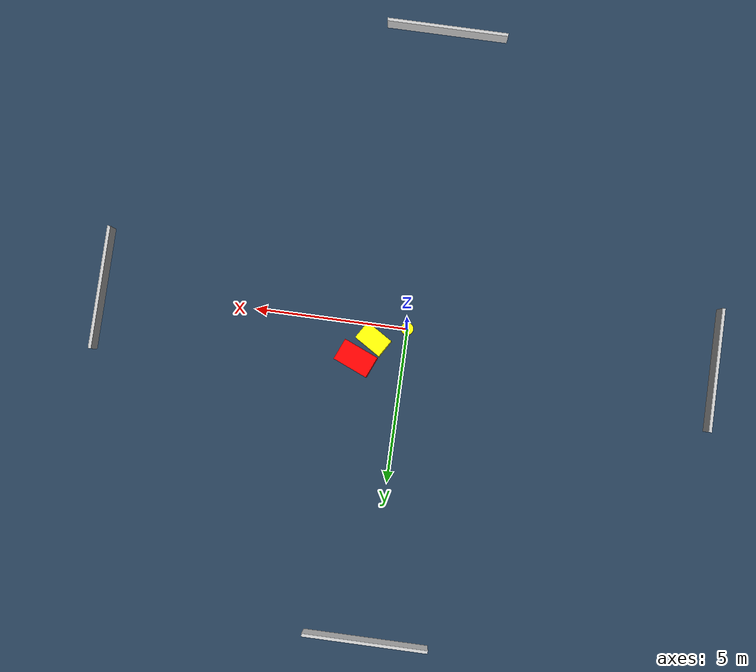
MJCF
<?xml version="1.0" ?>
<mujoco model="generated_environment">
  <option timestep="0.01" integrator="RK4" cone="elliptic"/>
  <default>
    <geom density="1"/>
  </default>
  <asset>
    <texture builtin="gradient" height="3072" name="skybox" rgb1="0.3 0.5 0.7" rgb2="0 0 0" type="skybox" width="512"/>
    <texture builtin="checker" height="300" name="groundplane" rgb1="0.2 0.3 0.4" rgb2="0.1 0.2 0.3" type="2d" width="300"/>
    <material name="groundplane" reflectance="0.2" texrepeat="5 5" texture="groundplane"/>
  </asset>
  <worldbody>
    <light dir="0 0 -1" directional="true" pos="0 0 1.5"/>
    <geom condim="3" friction="0.5 0.005 0.001" material="groundplane" name="floor" pos="0 0 0" size="0 0 0.05" type="plane"/>
    <body name="walls">
      <geom name="wall_1" condim="4" pos="-10.0 0.0 0.3" rgba="0.800000011920929 0.800000011920929 0.800000011920929 1.0" size="0.05 2.0 0.3" type="box"/>
      <geom name="wall_2" condim="4" pos="10.0 0.0 0.3" rgba="0.800000011920929 0.800000011920929 0.800000011920929 1.0" size="0.05 2.0 0.3" type="box"/>
      <geom name="wall_3" condim="4" pos="0.0 -10.0 0.3" rgba="0.800000011920929 0.800000011920929 0.800000011920929 1.0" size="2.0 0.05 0.3" type="box"/>
      <geom name="wall_4" condim="4" pos="0.0 10.0 0.3" rgba="0.800000011920929 0.800000011920929 0.800000011920929 1.0" size="2.0 0.05 0.3" type="box"/>
    </body>
    <body name="robot">
      <joint name="joint_x" type="slide" pos="0 0 0" axis="1 0 0"/>
      <joint name="joint_y" type="slide" pos="0 0 0" axis="0 1 0"/>
      <geom name="robot" type="cylinder" pos="0.0 0.0 0.2" size="0.2 0.2 0.0" mass="5.0" friction="1.0 0.005 0.0001" condim="4" rgba="1.0 1.0 0.0 1.0"/>
    </body>
    <body name="obstacle_1_movable">
      <geom name="obstacle_1_movable" condim="4" pos="1.0327115395167825 0.49293519962770715 0.3" euler="0 0 148.24705494749696" friction="0.0 0.005 0.001" rgba="1.0 1.0 0.0 1.0" size="0.48645576083571823 0.3198978833295695 0.3" type="box" mass="0.1"/>
      <joint type="free"/>
    </body>
    <body name="obstacle_2_static">
      <geom name="obstacle_2_static" condim="4" pos="1.5129323299676811 1.1727353521867447 0.3" euler="0 0 337.245727369639" friction="0.0 0.005 0.001" rgba="1.0 0.0 0.0 1.0" size="0.5966609592517498 0.36681340175188315 0.3" type="box"/>
    </body>
  </worldbody>
  <actuator>
    <motor name="actuator_x" joint="joint_x" gear="1" ctrlrange="-1 1"/>
    <motor name="actuator_y" joint="joint_y" gear="1" ctrlrange="-1 1"/>
  </actuator>
</mujoco>
